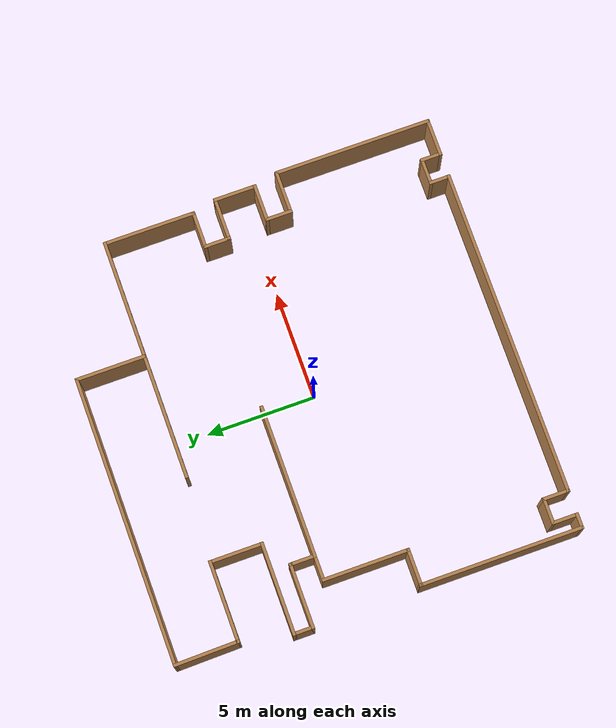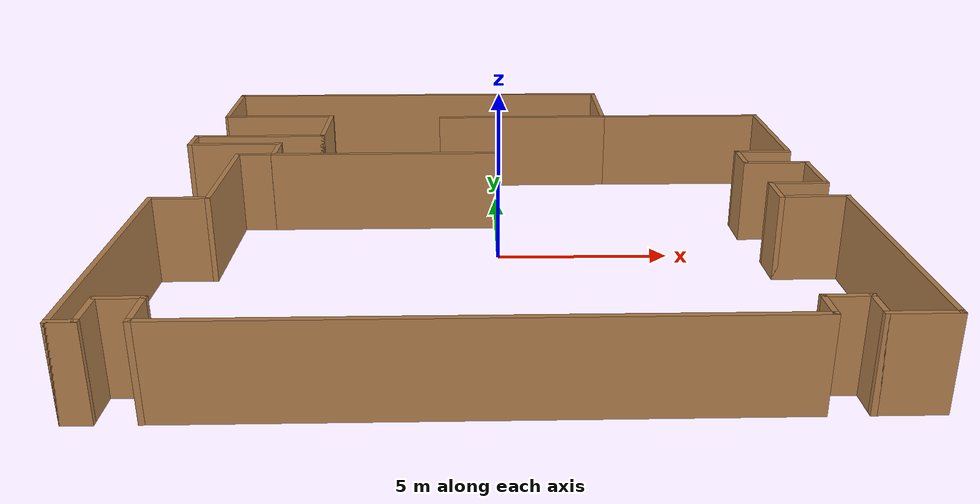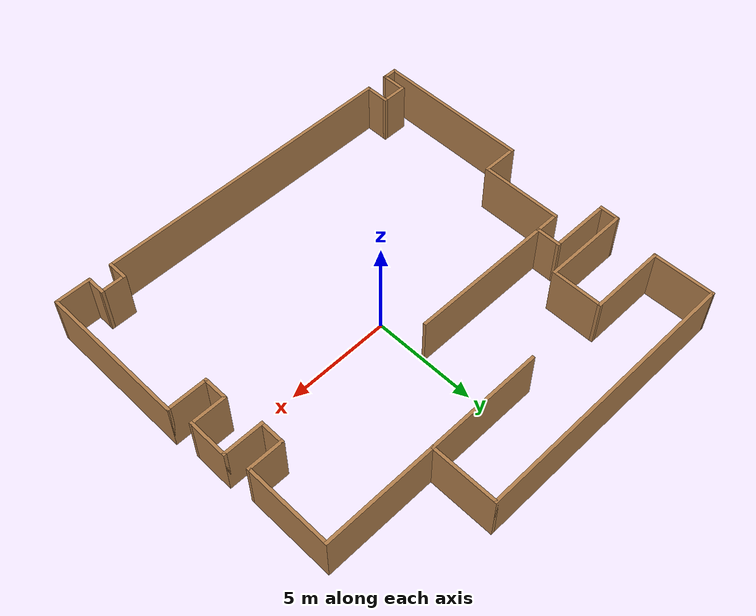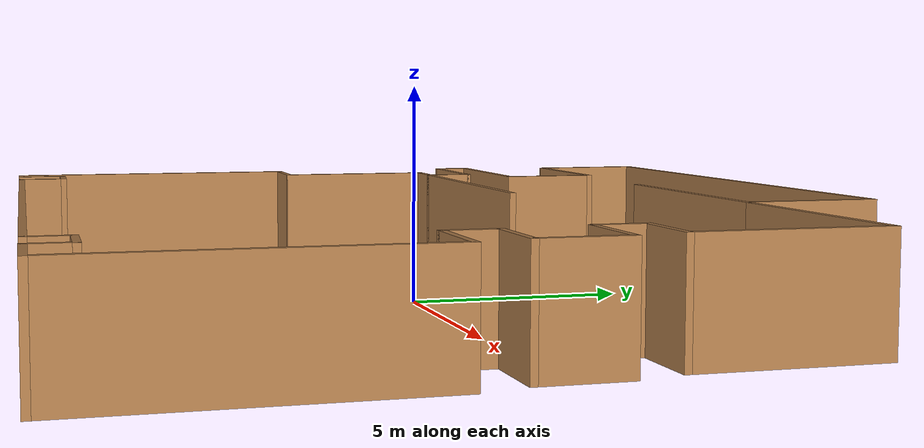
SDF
<?xml version='1.0'?>
<sdf version='1.6'>
  <model name='map_125'>
    <pose frame=''>-0.081193 0.398814 0 0 -0 0</pose>
    <link name='Wall_10'>
      <collision name='Wall_10_Collision'>
        <geometry>
          <box>
            <size>1.75 0.15 2.5</size>
          </box>
        </geometry>
        <pose frame=''>0 0 1.25 0 -0 0</pose>
      </collision>
      <visual name='Wall_10_Visual'>
        <pose frame=''>0 0 1.25 0 -0 0</pose>
        <geometry>
          <box>
            <size>1.75 0.15 2.5</size>
          </box>
        </geometry>
        <material>
          <script>
            <uri>file://media/materials/scripts/gazebo.material</uri>
            <name>Gazebo/Wood</name>
          </script>
          <ambient>1 1 1 1</ambient>
        </material>
        <meta>
          <layer>0</layer>
        </meta>
      </visual>
      <pose frame=''>8.65 -0.975652 0 0 -0 3.14159</pose>
    </link>
    <link name='Wall_11'>
      <collision name='Wall_11_Collision'>
        <geometry>
          <box>
            <size>1.25 0.15 2.5</size>
          </box>
        </geometry>
        <pose frame=''>0 0 1.25 0 -0 0</pose>
      </collision>
      <visual name='Wall_11_Visual'>
        <pose frame=''>0 0 1.25 0 -0 0</pose>
        <geometry>
          <box>
            <size>1.25 0.15 2.5</size>
          </box>
        </geometry>
        <material>
          <script>
            <uri>file://media/materials/scripts/gazebo.material</uri>
            <name>Gazebo/Wood</name>
          </script>
          <ambient>1 1 1 1</ambient>
        </material>
        <meta>
          <layer>0</layer>
        </meta>
      </visual>
      <pose frame=''>7.85 -1.52565 0 0 -0 -1.5708</pose>
    </link>
    <link name='Wall_12'>
      <collision name='Wall_12_Collision'>
        <geometry>
          <box>
            <size>2 0.15 2.5</size>
          </box>
        </geometry>
        <pose frame=''>0 0 1.25 0 -0 0</pose>
      </collision>
      <visual name='Wall_12_Visual'>
        <pose frame=''>0 0 1.25 0 -0 0</pose>
        <geometry>
          <box>
            <size>2 0.15 2.5</size>
          </box>
        </geometry>
        <material>
          <script>
            <uri>file://media/materials/scripts/gazebo.material</uri>
            <name>Gazebo/Wood</name>
          </script>
          <ambient>1 1 1 1</ambient>
        </material>
        <meta>
          <layer>0</layer>
        </meta>
      </visual>
      <pose frame=''>8.775 -2.07565 0 0 -0 0</pose>
    </link>
    <link name='Wall_13'>
      <collision name='Wall_13_Collision'>
        <geometry>
          <box>
            <size>7.25 0.15 2.5</size>
          </box>
        </geometry>
        <pose frame=''>0 0 1.25 0 -0 0</pose>
      </collision>
      <visual name='Wall_13_Visual'>
        <pose frame=''>0 0 1.25 0 -0 0</pose>
        <geometry>
          <box>
            <size>7.25 0.15 2.5</size>
          </box>
        </geometry>
        <material>
          <script>
            <uri>file://media/materials/scripts/gazebo.material</uri>
            <name>Gazebo/Wood</name>
          </script>
          <ambient>1 1 1 1</ambient>
        </material>
        <meta>
          <layer>0</layer>
        </meta>
      </visual>
      <pose frame=''>9.7 -5.62565 0 0 -0 -1.5708</pose>
    </link>
    <link name='Wall_14'>
      <collision name='Wall_14_Collision'>
        <geometry>
          <box>
            <size>1.75 0.15 2.5</size>
          </box>
        </geometry>
        <pose frame=''>0 0 1.25 0 -0 0</pose>
      </collision>
      <visual name='Wall_14_Visual'>
        <pose frame=''>0 0 1.25 0 -0 0</pose>
        <geometry>
          <box>
            <size>1.75 0.15 2.5</size>
          </box>
        </geometry>
        <material>
          <script>
            <uri>file://media/materials/scripts/gazebo.material</uri>
            <name>Gazebo/Wood</name>
          </script>
          <ambient>1 1 1 1</ambient>
        </material>
        <meta>
          <layer>0</layer>
        </meta>
      </visual>
      <pose frame=''>8.9 -9.17565 0 0 -0 3.14159</pose>
    </link>
    <link name='Wall_15'>
      <collision name='Wall_15_Collision'>
        <geometry>
          <box>
            <size>1 0.15 2.5</size>
          </box>
        </geometry>
        <pose frame=''>0 0 1.25 0 -0 0</pose>
      </collision>
      <visual name='Wall_15_Visual'>
        <pose frame=''>0 0 1.25 0 -0 0</pose>
        <geometry>
          <box>
            <size>1 0.15 2.5</size>
          </box>
        </geometry>
        <material>
          <script>
            <uri>file://media/materials/scripts/gazebo.material</uri>
            <name>Gazebo/Wood</name>
          </script>
          <ambient>1 1 1 1</ambient>
        </material>
        <meta>
          <layer>0</layer>
        </meta>
      </visual>
      <pose frame=''>8.1 -8.75065 0 0 -0 1.5708</pose>
    </link>
    <link name='Wall_16'>
      <collision name='Wall_16_Collision'>
        <geometry>
          <box>
            <size>1.25 0.15 2.5</size>
          </box>
        </geometry>
        <pose frame=''>0 0 1.25 0 -0 0</pose>
      </collision>
      <visual name='Wall_16_Visual'>
        <pose frame=''>0 0 1.25 0 -0 0</pose>
        <geometry>
          <box>
            <size>1.25 0.15 2.5</size>
          </box>
        </geometry>
        <material>
          <script>
            <uri>file://media/materials/scripts/gazebo.material</uri>
            <name>Gazebo/Wood</name>
          </script>
          <ambient>1 1 1 1</ambient>
        </material>
        <meta>
          <layer>0</layer>
        </meta>
      </visual>
      <pose frame=''>7.55 -8.32565 0 0 -0 3.14159</pose>
    </link>
    <link name='Wall_17'>
      <collision name='Wall_17_Collision'>
        <geometry>
          <box>
            <size>1 0.15 2.5</size>
          </box>
        </geometry>
        <pose frame=''>0 0 1.25 0 -0 0</pose>
      </collision>
      <visual name='Wall_17_Visual'>
        <pose frame=''>0 0 1.25 0 -0 0</pose>
        <geometry>
          <box>
            <size>1 0.15 2.5</size>
          </box>
        </geometry>
        <material>
          <script>
            <uri>file://media/materials/scripts/gazebo.material</uri>
            <name>Gazebo/Wood</name>
          </script>
          <ambient>1 1 1 1</ambient>
        </material>
        <meta>
          <layer>0</layer>
        </meta>
      </visual>
      <pose frame=''>7 -8.75065 0 0 -0 -1.5708</pose>
    </link>
    <link name='Wall_18'>
      <collision name='Wall_18_Collision'>
        <geometry>
          <box>
            <size>15 0.15 2.5</size>
          </box>
        </geometry>
        <pose frame=''>0 0 1.25 0 -0 0</pose>
      </collision>
      <visual name='Wall_18_Visual'>
        <pose frame=''>0 0 1.25 0 -0 0</pose>
        <geometry>
          <box>
            <size>15 0.15 2.5</size>
          </box>
        </geometry>
        <material>
          <script>
            <uri>file://media/materials/scripts/gazebo.material</uri>
            <name>Gazebo/Wood</name>
          </script>
          <ambient>1 1 1 1</ambient>
        </material>
        <meta>
          <layer>0</layer>
        </meta>
      </visual>
      <pose frame=''>-0.425 -9.17565 0 0 -0 3.14159</pose>
    </link>
    <link name='Wall_19'>
      <collision name='Wall_19_Collision'>
        <geometry>
          <box>
            <size>1.25 0.15 2.5</size>
          </box>
        </geometry>
        <pose frame=''>0 0 1.25 0 -0 0</pose>
      </collision>
      <visual name='Wall_19_Visual'>
        <pose frame=''>0 0 1.25 0 -0 0</pose>
        <geometry>
          <box>
            <size>1.25 0.15 2.5</size>
          </box>
        </geometry>
        <material>
          <script>
            <uri>file://media/materials/scripts/gazebo.material</uri>
            <name>Gazebo/Wood</name>
          </script>
          <ambient>1 1 1 1</ambient>
        </material>
        <meta>
          <layer>0</layer>
        </meta>
      </visual>
      <pose frame=''>-7.85 -8.62565 0 0 -0 1.5708</pose>
    </link>
    <link name='Wall_2'>
      <collision name='Wall_2_Collision'>
        <geometry>
          <box>
            <size>13.25 0.15 2.5</size>
          </box>
        </geometry>
        <pose frame=''>0 0 1.25 0 -0 0</pose>
      </collision>
      <visual name='Wall_2_Visual'>
        <pose frame=''>0 0 1.25 0 -0 0</pose>
        <geometry>
          <box>
            <size>13.25 0.15 2.5</size>
          </box>
        </geometry>
        <material>
          <script>
            <uri>file://media/materials/scripts/gazebo.material</uri>
            <name>Gazebo/Wood</name>
          </script>
          <ambient>1 1 1 1</ambient>
        </material>
        <meta>
          <layer>0</layer>
        </meta>
      </visual>
      <pose frame=''>-2.7 9.17435 0 0 -0 0</pose>
    </link>
    <link name='Wall_20'>
      <collision name='Wall_20_Collision'>
        <geometry>
          <box>
            <size>1.25 0.15 2.5</size>
          </box>
        </geometry>
        <pose frame=''>0 0 1.25 0 -0 0</pose>
      </collision>
      <visual name='Wall_20_Visual'>
        <pose frame=''>0 0 1.25 0 -0 0</pose>
        <geometry>
          <box>
            <size>1.25 0.15 2.5</size>
          </box>
        </geometry>
        <material>
          <script>
            <uri>file://media/materials/scripts/gazebo.material</uri>
            <name>Gazebo/Wood</name>
          </script>
          <ambient>1 1 1 1</ambient>
        </material>
        <meta>
          <layer>0</layer>
        </meta>
      </visual>
      <pose frame=''>-8.4 -8.07565 0 0 -0 3.14159</pose>
    </link>
    <link name='Wall_21'>
      <collision name='Wall_21_Collision'>
        <geometry>
          <box>
            <size>1.25 0.15 2.5</size>
          </box>
        </geometry>
        <pose frame=''>0 0 1.25 0 -0 0</pose>
      </collision>
      <visual name='Wall_21_Visual'>
        <pose frame=''>0 0 1.25 0 -0 0</pose>
        <geometry>
          <box>
            <size>1.25 0.15 2.5</size>
          </box>
        </geometry>
        <material>
          <script>
            <uri>file://media/materials/scripts/gazebo.material</uri>
            <name>Gazebo/Wood</name>
          </script>
          <ambient>1 1 1 1</ambient>
        </material>
        <meta>
          <layer>0</layer>
        </meta>
      </visual>
      <pose frame=''>-8.95 -8.62565 0 0 -0 -1.5708</pose>
    </link>
    <link name='Wall_22'>
      <collision name='Wall_22_Collision'>
        <geometry>
          <box>
            <size>0.75 0.15 2.5</size>
          </box>
        </geometry>
        <pose frame=''>0 0 1.25 0 -0 0</pose>
      </collision>
      <visual name='Wall_22_Visual'>
        <pose frame=''>0 0 1.25 0 -0 0</pose>
        <geometry>
          <box>
            <size>0.75 0.15 2.5</size>
          </box>
        </geometry>
        <material>
          <script>
            <uri>file://media/materials/scripts/gazebo.material</uri>
            <name>Gazebo/Wood</name>
          </script>
          <ambient>1 1 1 1</ambient>
        </material>
        <meta>
          <layer>0</layer>
        </meta>
      </visual>
      <pose frame=''>-9.25 -9.17565 0 0 -0 3.14159</pose>
    </link>
    <link name='Wall_23'>
      <collision name='Wall_23_Collision'>
        <geometry>
          <box>
            <size>7.5 0.15 2.5</size>
          </box>
        </geometry>
        <pose frame=''>0 0 1.25 0 -0 0</pose>
      </collision>
      <visual name='Wall_23_Visual'>
        <pose frame=''>0 0 1.25 0 -0 0</pose>
        <geometry>
          <box>
            <size>7.5 0.15 2.5</size>
          </box>
        </geometry>
        <material>
          <script>
            <uri>file://media/materials/scripts/gazebo.material</uri>
            <name>Gazebo/Wood</name>
          </script>
          <ambient>1 1 1 1</ambient>
        </material>
        <meta>
          <layer>0</layer>
        </meta>
      </visual>
      <pose frame=''>-9.55 -5.50065 0 0 -0 1.5708</pose>
    </link>
    <link name='Wall_24'>
      <collision name='Wall_24_Collision'>
        <geometry>
          <box>
            <size>1.75 0.15 2.5</size>
          </box>
        </geometry>
        <pose frame=''>0 0 1.25 0 -0 0</pose>
      </collision>
      <visual name='Wall_24_Visual'>
        <pose frame=''>0 0 1.25 0 -0 0</pose>
        <geometry>
          <box>
            <size>1.75 0.15 2.5</size>
          </box>
        </geometry>
        <material>
          <script>
            <uri>file://media/materials/scripts/gazebo.material</uri>
            <name>Gazebo/Wood</name>
          </script>
          <ambient>1 1 1 1</ambient>
        </material>
        <meta>
          <layer>0</layer>
        </meta>
      </visual>
      <pose frame=''>-8.75 -1.82565 0 0 -0 0</pose>
    </link>
    <link name='Wall_25'>
      <collision name='Wall_25_Collision'>
        <geometry>
          <box>
            <size>4 0.15 2.5</size>
          </box>
        </geometry>
        <pose frame=''>0 0 1.25 0 -0 0</pose>
      </collision>
      <visual name='Wall_25_Visual'>
        <pose frame=''>0 0 1.25 0 -0 0</pose>
        <geometry>
          <box>
            <size>4 0.15 2.5</size>
          </box>
        </geometry>
        <material>
          <script>
            <uri>file://media/materials/scripts/gazebo.material</uri>
            <name>Gazebo/Wood</name>
          </script>
          <ambient>1 1 1 1</ambient>
        </material>
        <meta>
          <layer>0</layer>
        </meta>
      </visual>
      <pose frame=''>-7.95 0.099348 0 0 -0 1.5708</pose>
    </link>
    <link name='Wall_26'>
      <collision name='Wall_26_Collision'>
        <geometry>
          <box>
            <size>1.25 0.15 2.5</size>
          </box>
        </geometry>
        <pose frame=''>0 0 1.25 0 -0 0</pose>
      </collision>
      <visual name='Wall_26_Visual'>
        <pose frame=''>0 0 1.25 0 -0 0</pose>
        <geometry>
          <box>
            <size>1.25 0.15 2.5</size>
          </box>
        </geometry>
        <material>
          <script>
            <uri>file://media/materials/scripts/gazebo.material</uri>
            <name>Gazebo/Wood</name>
          </script>
          <ambient>1 1 1 1</ambient>
        </material>
        <meta>
          <layer>0</layer>
        </meta>
      </visual>
      <pose frame=''>-7.4 2.02435 0 0 -0 0</pose>
    </link>
    <link name='Wall_27'>
      <collision name='Wall_27_Collision'>
        <geometry>
          <box>
            <size>1.25 0.15 2.5</size>
          </box>
        </geometry>
        <pose frame=''>0 0 1.25 0 -0 0</pose>
      </collision>
      <visual name='Wall_27_Visual'>
        <pose frame=''>0 0 1.25 0 -0 0</pose>
        <geometry>
          <box>
            <size>1.25 0.15 2.5</size>
          </box>
        </geometry>
        <material>
          <script>
            <uri>file://media/materials/scripts/gazebo.material</uri>
            <name>Gazebo/Wood</name>
          </script>
          <ambient>1 1 1 1</ambient>
        </material>
        <meta>
          <layer>0</layer>
        </meta>
      </visual>
      <pose frame=''>-6.85 2.57435 0 0 -0 1.5708</pose>
    </link>
    <link name='Wall_28'>
      <collision name='Wall_28_Collision'>
        <geometry>
          <box>
            <size>3 0.15 2.5</size>
          </box>
        </geometry>
        <pose frame=''>0 0 1.25 0 -0 0</pose>
      </collision>
      <visual name='Wall_28_Visual'>
        <pose frame=''>0 0 1.25 0 -0 0</pose>
        <geometry>
          <box>
            <size>3 0.15 2.5</size>
          </box>
        </geometry>
        <material>
          <script>
            <uri>file://media/materials/scripts/gazebo.material</uri>
            <name>Gazebo/Wood</name>
          </script>
          <ambient>1 1 1 1</ambient>
        </material>
        <meta>
          <layer>0</layer>
        </meta>
      </visual>
      <pose frame=''>-8.275 3.12435 0 0 -0 3.14159</pose>
    </link>
    <link name='Wall_29'>
      <collision name='Wall_29_Collision'>
        <geometry>
          <box>
            <size>1 0.15 2.5</size>
          </box>
        </geometry>
        <pose frame=''>0 0 1.25 0 -0 0</pose>
      </collision>
      <visual name='Wall_29_Visual'>
        <pose frame=''>0 0 1.25 0 -0 0</pose>
        <geometry>
          <box>
            <size>1 0.15 2.5</size>
          </box>
        </geometry>
        <material>
          <script>
            <uri>file://media/materials/scripts/gazebo.material</uri>
            <name>Gazebo/Wood</name>
          </script>
          <ambient>1 1 1 1</ambient>
        </material>
        <meta>
          <layer>0</layer>
        </meta>
      </visual>
      <pose frame=''>-9.7 3.54935 0 0 -0 1.5708</pose>
    </link>
    <link name='Wall_3'>
      <collision name='Wall_3_Collision'>
        <geometry>
          <box>
            <size>3.25 0.15 2.5</size>
          </box>
        </geometry>
        <pose frame=''>0 0 1.25 0 -0 0</pose>
      </collision>
      <visual name='Wall_3_Visual'>
        <pose frame=''>0 0 1.25 0 -0 0</pose>
        <geometry>
          <box>
            <size>3.25 0.15 2.5</size>
          </box>
        </geometry>
        <material>
          <script>
            <uri>file://media/materials/scripts/gazebo.material</uri>
            <name>Gazebo/Wood</name>
          </script>
          <ambient>1 1 1 1</ambient>
        </material>
        <meta>
          <layer>0</layer>
        </meta>
      </visual>
      <pose frame=''>3.85 7.62435 0 0 -0 -1.5708</pose>
    </link>
    <link name='Wall_30'>
      <collision name='Wall_30_Collision'>
        <geometry>
          <box>
            <size>4.25 0.15 2.5</size>
          </box>
        </geometry>
        <pose frame=''>0 0 1.25 0 -0 0</pose>
      </collision>
      <visual name='Wall_30_Visual'>
        <pose frame=''>0 0 1.25 0 -0 0</pose>
        <geometry>
          <box>
            <size>4.25 0.15 2.5</size>
          </box>
        </geometry>
        <material>
          <script>
            <uri>file://media/materials/scripts/gazebo.material</uri>
            <name>Gazebo/Wood</name>
          </script>
          <ambient>1 1 1 1</ambient>
        </material>
        <meta>
          <layer>0</layer>
        </meta>
      </visual>
      <pose frame=''>-7.65 3.97435 0 0 -0 0</pose>
    </link>
    <link name='Wall_31'>
      <collision name='Wall_31_Collision'>
        <geometry>
          <box>
            <size>2.5 0.15 2.5</size>
          </box>
        </geometry>
        <pose frame=''>0 0 1.25 0 -0 0</pose>
      </collision>
      <visual name='Wall_31_Visual'>
        <pose frame=''>0 0 1.25 0 -0 0</pose>
        <geometry>
          <box>
            <size>2.5 0.15 2.5</size>
          </box>
        </geometry>
        <material>
          <script>
            <uri>file://media/materials/scripts/gazebo.material</uri>
            <name>Gazebo/Wood</name>
          </script>
          <ambient>1 1 1 1</ambient>
        </material>
        <meta>
          <layer>0</layer>
        </meta>
      </visual>
      <pose frame=''>-5.6 5.14935 0 0 -0 1.5708</pose>
    </link>
    <link name='Wall_32'>
      <collision name='Wall_32_Collision'>
        <geometry>
          <box>
            <size>3.75 0.15 2.5</size>
          </box>
        </geometry>
        <pose frame=''>0 0 1.25 0 -0 0</pose>
      </collision>
      <visual name='Wall_32_Visual'>
        <pose frame=''>0 0 1.25 0 -0 0</pose>
        <geometry>
          <box>
            <size>3.75 0.15 2.5</size>
          </box>
        </geometry>
        <material>
          <script>
            <uri>file://media/materials/scripts/gazebo.material</uri>
            <name>Gazebo/Wood</name>
          </script>
          <ambient>1 1 1 1</ambient>
        </material>
        <meta>
          <layer>0</layer>
        </meta>
      </visual>
      <pose frame=''>-7.4 6.32435 0 0 -0 3.14159</pose>
    </link>
    <link name='Wall_33'>
      <collision name='Wall_33_Collision'>
        <geometry>
          <box>
            <size>3.00044 0.15 2.5</size>
          </box>
        </geometry>
        <pose frame=''>0 0 1.25 0 -0 0</pose>
      </collision>
      <visual name='Wall_33_Visual'>
        <pose frame=''>0 0 1.25 0 -0 0</pose>
        <geometry>
          <box>
            <size>3.00044 0.15 2.5</size>
          </box>
        </geometry>
        <material>
          <script>
            <uri>file://media/materials/scripts/gazebo.material</uri>
            <name>Gazebo/Wood</name>
          </script>
          <ambient>1 1 1 1</ambient>
        </material>
        <meta>
          <layer>0</layer>
        </meta>
      </visual>
      <pose frame=''>-9.225 7.74935 0 0 -0 1.58834</pose>
    </link>
    <link name='Wall_35'>
      <collision name='Wall_35_Collision'>
        <geometry>
          <box>
            <size>5.75 0.15 2.5</size>
          </box>
        </geometry>
        <pose frame=''>0 0 1.25 0 -0 0</pose>
      </collision>
      <visual name='Wall_35_Visual'>
        <pose frame=''>0 0 1.25 0 -0 0</pose>
        <geometry>
          <box>
            <size>5.75 0.15 2.5</size>
          </box>
        </geometry>
        <material>
          <script>
            <uri>file://media/materials/scripts/gazebo.material</uri>
            <name>Gazebo/Wood</name>
          </script>
          <ambient>1 1 1 1</ambient>
        </material>
        <meta>
          <layer>0</layer>
        </meta>
      </visual>
      <pose frame=''>1.05 6.07435 0 0 -0 3.14159</pose>
    </link>
    <link name='Wall_38'>
      <collision name='Wall_38_Collision'>
        <geometry>
          <box>
            <size>7 0.15 2.5</size>
          </box>
        </geometry>
        <pose frame=''>0 0 1.25 0 -0 0</pose>
      </collision>
      <visual name='Wall_38_Visual'>
        <pose frame=''>0 0 1.25 0 -0 0</pose>
        <geometry>
          <box>
            <size>7 0.15 2.5</size>
          </box>
        </geometry>
        <material>
          <script>
            <uri>file://media/materials/scripts/gazebo.material</uri>
            <name>Gazebo/Wood</name>
          </script>
          <ambient>1 1 1 1</ambient>
        </material>
        <meta>
          <layer>0</layer>
        </meta>
      </visual>
      <pose frame=''>-3.425 2.02435 0 0 -0 0</pose>
    </link>
    <link name='Wall_4'>
      <collision name='Wall_4_Collision'>
        <geometry>
          <box>
            <size>5.5 0.15 2.5</size>
          </box>
        </geometry>
        <pose frame=''>0 0 1.25 0 -0 0</pose>
      </collision>
      <visual name='Wall_4_Visual'>
        <pose frame=''>0 0 1.25 0 -0 0</pose>
        <geometry>
          <box>
            <size>5.5 0.15 2.5</size>
          </box>
        </geometry>
        <material>
          <script>
            <uri>file://media/materials/scripts/gazebo.material</uri>
            <name>Gazebo/Wood</name>
          </script>
          <ambient>1 1 1 1</ambient>
        </material>
        <meta>
          <layer>0</layer>
        </meta>
      </visual>
      <pose frame=''>6.525 6.07435 0 0 -0 0</pose>
    </link>
    <link name='Wall_5'>
      <collision name='Wall_5_Collision'>
        <geometry>
          <box>
            <size>4.25 0.15 2.5</size>
          </box>
        </geometry>
        <pose frame=''>0 0 1.25 0 -0 0</pose>
      </collision>
      <visual name='Wall_5_Visual'>
        <pose frame=''>0 0 1.25 0 -0 0</pose>
        <geometry>
          <box>
            <size>4.25 0.15 2.5</size>
          </box>
        </geometry>
        <material>
          <script>
            <uri>file://media/materials/scripts/gazebo.material</uri>
            <name>Gazebo/Wood</name>
          </script>
          <ambient>1 1 1 1</ambient>
        </material>
        <meta>
          <layer>0</layer>
        </meta>
      </visual>
      <pose frame=''>9.2 4.02435 0 0 -0 -1.5708</pose>
    </link>
    <link name='Wall_6'>
      <collision name='Wall_6_Collision'>
        <geometry>
          <box>
            <size>1.75 0.15 2.5</size>
          </box>
        </geometry>
        <pose frame=''>0 0 1.25 0 -0 0</pose>
      </collision>
      <visual name='Wall_6_Visual'>
        <pose frame=''>0 0 1.25 0 -0 0</pose>
        <geometry>
          <box>
            <size>1.75 0.15 2.5</size>
          </box>
        </geometry>
        <material>
          <script>
            <uri>file://media/materials/scripts/gazebo.material</uri>
            <name>Gazebo/Wood</name>
          </script>
          <ambient>1 1 1 1</ambient>
        </material>
        <meta>
          <layer>0</layer>
        </meta>
      </visual>
      <pose frame=''>8.4 1.97435 0 0 -0 3.14159</pose>
    </link>
    <link name='Wall_7'>
      <collision name='Wall_7_Collision'>
        <geometry>
          <box>
            <size>1.25 0.15 2.5</size>
          </box>
        </geometry>
        <pose frame=''>0 0 1.25 0 -0 0</pose>
      </collision>
      <visual name='Wall_7_Visual'>
        <pose frame=''>0 0 1.25 0 -0 0</pose>
        <geometry>
          <box>
            <size>1.25 0.15 2.5</size>
          </box>
        </geometry>
        <material>
          <script>
            <uri>file://media/materials/scripts/gazebo.material</uri>
            <name>Gazebo/Wood</name>
          </script>
          <ambient>1 1 1 1</ambient>
        </material>
        <meta>
          <layer>0</layer>
        </meta>
      </visual>
      <pose frame=''>7.6 1.42435 0 0 -0 -1.5708</pose>
    </link>
    <link name='Wall_8'>
      <collision name='Wall_8_Collision'>
        <geometry>
          <box>
            <size>2 0.15 2.5</size>
          </box>
        </geometry>
        <pose frame=''>0 0 1.25 0 -0 0</pose>
      </collision>
      <visual name='Wall_8_Visual'>
        <pose frame=''>0 0 1.25 0 -0 0</pose>
        <geometry>
          <box>
            <size>2 0.15 2.5</size>
          </box>
        </geometry>
        <material>
          <script>
            <uri>file://media/materials/scripts/gazebo.material</uri>
            <name>Gazebo/Wood</name>
          </script>
          <ambient>1 1 1 1</ambient>
        </material>
        <meta>
          <layer>0</layer>
        </meta>
      </visual>
      <pose frame=''>8.525 0.874348 0 0 -0 0</pose>
    </link>
    <link name='Wall_9'>
      <collision name='Wall_9_Collision'>
        <geometry>
          <box>
            <size>2 0.15 2.5</size>
          </box>
        </geometry>
        <pose frame=''>0 0 1.25 0 -0 0</pose>
      </collision>
      <visual name='Wall_9_Visual'>
        <pose frame=''>0 0 1.25 0 -0 0</pose>
        <geometry>
          <box>
            <size>2 0.15 2.5</size>
          </box>
        </geometry>
        <material>
          <script>
            <uri>file://media/materials/scripts/gazebo.material</uri>
            <name>Gazebo/Wood</name>
          </script>
          <ambient>1 1 1 1</ambient>
        </material>
        <meta>
          <layer>0</layer>
        </meta>
      </visual>
      <pose frame=''>9.45 -0.050652 0 0 -0 -1.5708</pose>
    </link>
    <static>1</static>
  </model>
</sdf>
